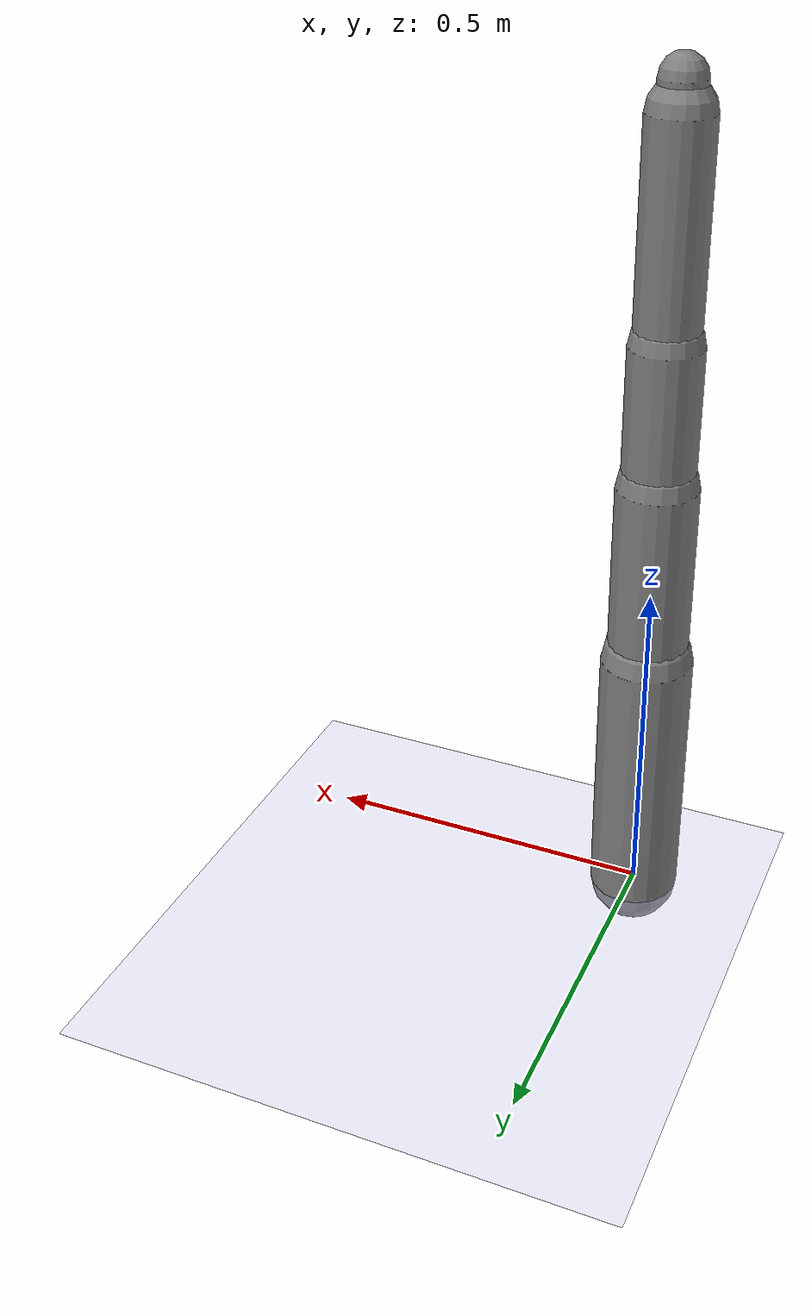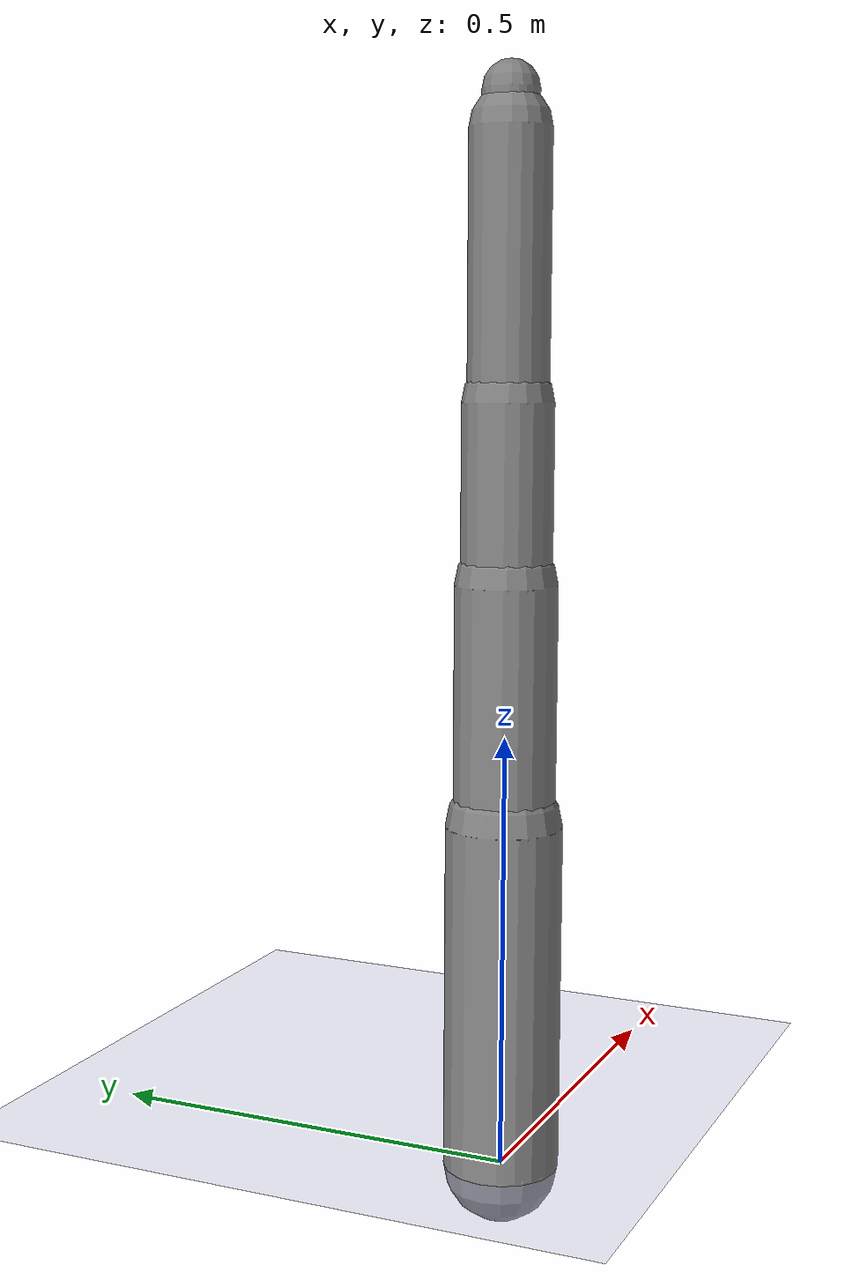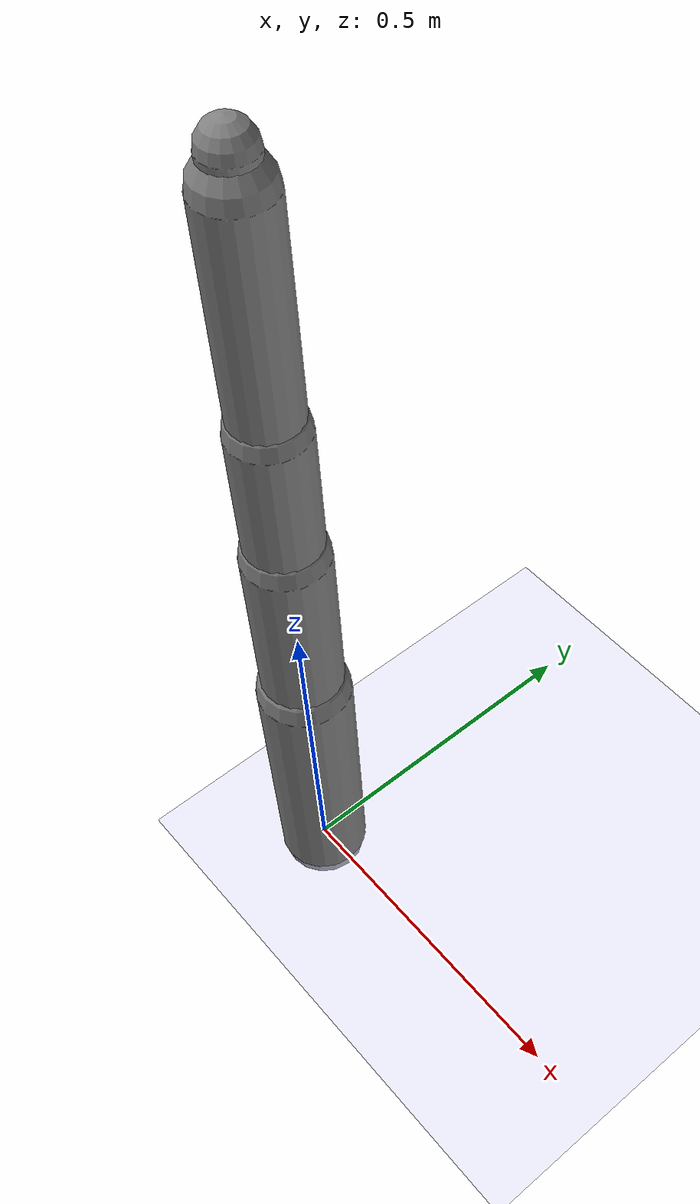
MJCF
<?xml version='1.0' encoding='UTF-8'?>
<mujoco model="robot_model">
  <worldbody>
    <light name="light" pos="0 -3 10" dir="0 0.5 -1" diffuse=".8 .8 .8" specular="0.1 0.1 0.1"/>
    <geom name="floor" type="plane" size="10.0 10.0 0.1" pos="0 0 0" rgba="0.8 0.8 1 1" contype="2" conaffinity="1"/>
    <body name="limb0" pos="0 0 0">
      <geom type="capsule" fromto="0 0 0 0 0 0.39941847856830287" size="0.06629417658494019" density="696.6429173119127" contype="1" conaffinity="2"/>
      <site type="sphere" size="0.01" name="limb0_site0" pos="0 0 0.27651086607450703"/>
      <site type="sphere" size="0.01" name="limb0_site1" pos="0 0 0.19133317076152526"/>
      <freejoint name="limb0_root"/>
      <body name="limb1" pos="0 0 0.27651086607450703">
        <geom type="capsule" fromto="0 0 0 0 0 0.39633494504822214" size="0.057691555622372784" density="1084.4737387645157" contype="1" conaffinity="2"/>
        <site type="sphere" size="0.01" name="limb1_site0" pos="0 0 0.3886095744617089"/>
        <site type="sphere" size="0.01" name="limb1_site1" pos="0 0 0.14123972290529305"/>
        <body name="limb2" pos="0 0 0.3886095744617089">
          <geom type="capsule" fromto="0 0 0 0 0 0.5" size="0.045329815490319995" density="1017.2531489540214" contype="1" conaffinity="2"/>
          <site type="sphere" size="0.01" name="limb2_site0" pos="0 0 0.34785567640622883"/>
          <body name="limb3" pos="0 0 0.34785567640622883">
            <geom type="capsule" fromto="0 0 0 0 0 0.19166066799868264" size="0.0314707546179414" density="956.2416848734547" contype="1" conaffinity="2"/>
            <joint name="joint_limb2_limb3_0" type="hinge" axis="0 1 0" range="-39.54825129765963 39.54825129765963" damping="5.0"/>
          </body>
          <joint name="joint_limb1_limb2_0" type="hinge" axis="0 1 0" range="-60.504894728636025 60.504894728636025" damping="5.0"/>
        </body>
        <body name="limb4" pos="0 0 0.14123972290529305">
          <geom type="capsule" fromto="0 0 0 0 0 0.4553959547646001" size="0.05112992904407712" density="905.1932138092933" contype="1" conaffinity="2"/>
          <joint name="joint_limb1_limb4_0" type="hinge" axis="0 0 1" range="-72.8282440056993 72.8282440056993" damping="5.0"/>
        </body>
        <joint name="joint_limb0_limb1_0" type="hinge" axis="0 1 0" range="-89.12714794406047 89.12714794406047" damping="5.0"/>
      </body>
      <body name="limb5" pos="0 0 0.19133317076152526">
        <geom type="capsule" fromto="0 0 0 0 0 0.43647014061798706" size="0.041248644928393044" density="789.216346642524" contype="1" conaffinity="2"/>
        <site type="sphere" size="0.01" name="limb5_site0" pos="0 0 0.3678912593167582"/>
        <body name="limb6" pos="0 0 0.3678912593167582">
          <geom type="capsule" fromto="0 0 0 0 0 0.4247975081430492" size="0.02" density="660.5970560437669" contype="1" conaffinity="2"/>
          <joint name="joint_limb5_limb6_0" type="hinge" axis="0 1 0" range="-116.19348413460918 116.19348413460918" damping="5.0"/>
        </body>
        <joint name="joint_limb0_limb5_0" type="hinge" axis="0 0 1" range="-45.82744000775369 45.82744000775369" damping="5.0"/>
      </body>
    </body>
  </worldbody>
  <actuator>
    <position name="position_actuator_joint_limb0_limb1_0" joint="joint_limb0_limb1_0" gear="1.8694611590103172" inheritrange="1" forcerange="-26.832459348661388 26.832459348661388" forcelimited="true" kp="100.0"/>
    <position name="position_actuator_joint_limb1_limb2_0" joint="joint_limb1_limb2_0" gear="1.855224638398584" inheritrange="1" forcerange="-18.401183504925072 18.401183504925072" forcelimited="true" kp="100.0"/>
    <position name="position_actuator_joint_limb2_limb3_0" joint="joint_limb2_limb3_0" gear="1.9577561249166682" inheritrange="1" forcerange="-3.4754816031092273 3.4754816031092273" forcelimited="true" kp="100.0"/>
    <position name="position_actuator_joint_limb1_limb4_0" joint="joint_limb1_limb4_0" gear="0.8397505935235454" inheritrange="1" forcerange="-19.46191769120985 19.46191769120985" forcelimited="true" kp="100.0"/>
    <position name="position_actuator_joint_limb0_limb5_0" joint="joint_limb0_limb5_0" gear="0.7342032220860385" inheritrange="1" forcerange="-10.36646920093445 10.36646920093445" forcelimited="true" kp="100.0"/>
    <position name="position_actuator_joint_limb5_limb6_0" joint="joint_limb5_limb6_0" gear="1.5911780312269714" inheritrange="1" forcerange="-1.8738714550406819 1.8738714550406819" forcelimited="true" kp="100.0"/>
  </actuator>
</mujoco>
